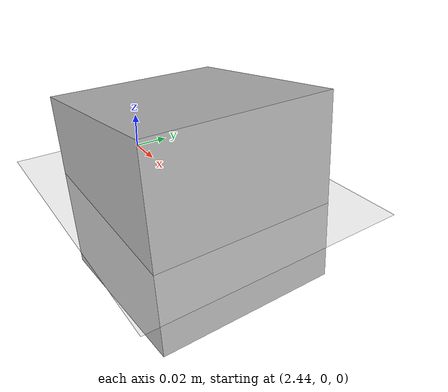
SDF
<?xml version="1.0"?>
<sdf version="1.5">
    <world name="default">

        <include>
            <uri>model://ground_plane</uri>
        </include>
        <include>
            <uri>model://sun</uri>
        </include>

<model name="my_box">
    <pose>2.5 0 0 0 3 0</pose>
    <static>false</static>
    <link name="link">

      <collision name="collision">
        <geometry>
          <box>
            <size>0.1 0.1 0.1</size>
          </box>
        </geometry>
      </collision>
      <visual name="visual">
        <geometry>
          <box>
            <size>0.1 0.1 0.1</size>
          </box>
        </geometry>
      </visual>
    </link>
  </model>
    </world>

</sdf>
